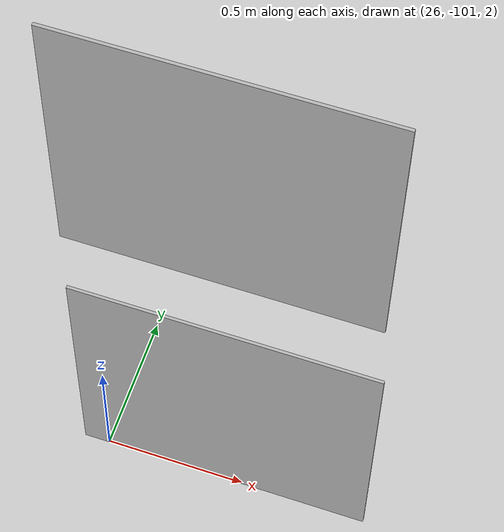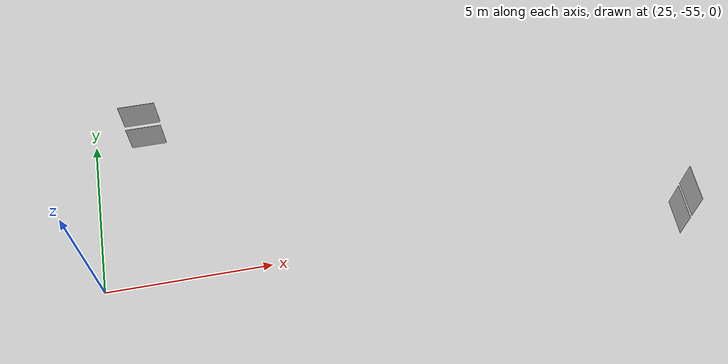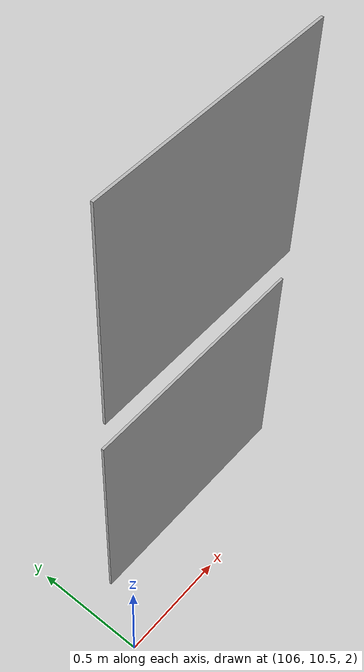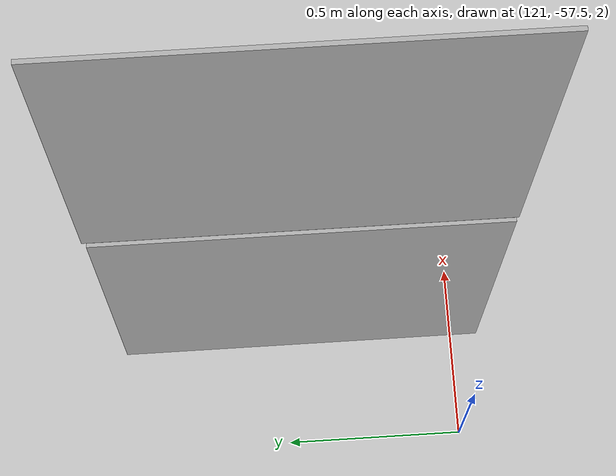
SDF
<sdf version="1.6">
 <world name="default">
  <light name="sun" type="directional">
   <pose>0 0 10 0 -0 0</pose>
   <diffuse>0.8 0.8 0.8 1</diffuse>
   <specular>0.1 0.1 0.1 1</specular>
   <attenuation>
    <range>100000</range>
    <constant>0.9</constant>
    <linear>0.01</linear>
    <quadratic>0.001</quadratic>
   </attenuation>
   <direction>-0.5 0.5 -1</direction>
   <spot><inner_angle>0</inner_angle><outer_angle>0</outer_angle><falloff>0</falloff></spot>
  </light>
  <model name="ground_plane">
   <static>1</static>
   <pose>0 0 -0.2 0 -0 0</pose>
   <scale>4 4 1</scale>
   <link name="link">
    <collision name="collision">
     <geometry><plane><normal>0 0 1</normal><size>100 100</size></plane></geometry>
     <surface><friction><ode><mu>100</mu><mu2>50</mu2></ode></friction></surface>
    </collision>
    <visual name="visual">
     <cast_shadows>0</cast_shadows>
     <geometry><plane><normal>0 0 1</normal><size>100 100</size></plane></geometry>
     <material>
      <script><uri>file://media/materials/scripts/gazebo.material</uri><name>Gazebo/Grey</name></script>
     </material>
    </visual>
   </link>
  </model>
  <gravity>0 0 -9.8</gravity>
  <magnetic_field>6e-06 2.3e-05 -4.2e-05</magnetic_field>
  <atmosphere type="adiabatic"/>
  <physics default="0" name="default_physics" type="ode">
   <max_step_size>0.001</max_step_size>
   <real_time_factor>1</real_time_factor>
   <real_time_update_rate>1000</real_time_update_rate>
  </physics>
  <scene>
   <ambient>235 235 235 1</ambient>
   <shadows>0</shadows>
   <sky><clouds><speed>12</speed></clouds></sky>
   <background>0.7 0.7 0.7 1</background>
  </scene>
  <spherical_coordinates>
   <surface_model>EARTH_WGS84</surface_model>
   <latitude_deg>0</latitude_deg>
   <longitude_deg>0</longitude_deg>
   <elevation>0</elevation>
   <heading_deg>0</heading_deg>
  </spherical_coordinates>
  <model name="Trafficsign_00001">
   <link name="main">
    <pose>0 0 0 3.14159 -1.57079 3.14159</pose>
    <visual name="main_Visual">
     <geometry><box><size>1 1 0.01</size></box></geometry>
     <material>
      <script>
       <uri>model://Trafficsign_00001/materials/scripts</uri>
       <uri>model://Trafficsign_00001/materials/textures</uri>
       <name>Trafficsign_00001</name>
      </script>
     </material>
    </visual>
   </link>
   <static>1</static>
   <pose>22.9963 -3.10558 2.75236 0 -0 0</pose>
  </model>
  <model name="Apriltag36_11_00001">
   <link name="main">
    <visual name="main_Visual">
     <geometry><box><size>1 1 0.01</size></box></geometry>
     <material>
      <script>
       <uri>model://Apriltag36_11_00001/materials/scripts</uri>
       <uri>model://Apriltag36_11_00001/materials/textures</uri>
       <name>Apriltag36_11_00001</name>
      </script>
     </material>
    </visual>
   </link>
   <static>1</static>
   <pose>22.9996 -3.10287 3.92921 3.14159 -1.57079 3.14159</pose>
  </model>
  <model name="Trafficsign_00001_clone">
   <link name="main">
    <pose>0 0 0 3.14159 -1.57079 3.14159</pose>
    <visual name="main_Visual">
     <geometry><box><size>1 1 0.01</size></box></geometry>
     <material>
      <script>
       <uri>model://Trafficsign_00001/materials/scripts</uri>
       <uri>model://Trafficsign_00001/materials/textures</uri>
       <name>Trafficsign_00001</name>
      </script>
     </material>
    </visual>
   </link>
   <static>1</static>
   <pose>27.0016 -51.5408 2.75236 0 -0 -1.5708</pose>
  </model>
  <model name="Apriltag36_11_00001_clone">
   <link name="main">
    <visual name="main_Visual">
     <geometry><box><size>1 1 0.01</size></box></geometry>
     <material>
      <script>
       <uri>model://Apriltag36_11_00001/materials/scripts</uri>
       <uri>model://Apriltag36_11_00001/materials/textures</uri>
       <name>Apriltag36_11_00001</name>
      </script>
     </material>
    </visual>
   </link>
   <static>1</static>
   <pose>27.0291 -51.5417 3.92921 1.5708 -1.57079 3.14159</pose>
  </model>
  <model name="Trafficsign_00003">
   <link name="main">
    <pose>0 0 0 3.14159 -1.57079 3.14159</pose>
    <visual name="main_Visual">
     <geometry><box><size>1 1 0.01</size></box></geometry>
     <material>
      <script>
       <uri>model://Trafficsign_00003/materials/scripts</uri>
       <uri>model://Trafficsign_00003/materials/textures</uri>
       <name>Trafficsign_00003</name>
      </script>
     </material>
    </visual>
   </link>
   <static>1</static>
   <pose>106.98 58.6046 2.74453 0 -0 -1.5708</pose>
  </model>
  <model name="Apriltag36_11_00003">
   <link name="main">
    <visual name="main_Visual">
     <geometry><box><size>1 1 0.01</size></box></geometry>
     <material>
      <script>
       <uri>model://Apriltag36_11_00003/materials/scripts</uri>
       <uri>model://Apriltag36_11_00003/materials/textures</uri>
       <name>Apriltag36_11_00003</name>
      </script>
     </material>
    </visual>
   </link>
   <static>1</static>
   <pose>106.982 58.6051 3.80889 -1.5708 0 0</pose>
  </model>
  <model name="Trafficsign_00002">
   <link name="main">
    <pose>0 0 0 3.14159 -1.57079 3.14159</pose>
    <visual name="main_Visual">
     <geometry><box><size>1 1 0.01</size></box></geometry>
     <material>
      <script>
       <uri>model://Trafficsign_00002/materials/scripts</uri>
       <uri>model://Trafficsign_00002/materials/textures</uri>
       <name>Trafficsign_00002</name>
      </script>
     </material>
    </visual>
   </link>
   <static>1</static>
   <pose>106.568 10.6851 2.74604 0 -0 -1.5708</pose>
  </model>
  <model name="Apriltag36_11_00002">
   <link name="main">
    <visual name="main_Visual">
     <geometry><box><size>1 1 0.01</size></box></geometry>
     <material>
      <script>
       <uri>model://Apriltag36_11_00002/materials/scripts</uri>
       <uri>model://Apriltag36_11_00002/materials/textures</uri>
       <name>Apriltag36_11_00002</name>
      </script>
     </material>
    </visual>
   </link>
   <static>1</static>
   <pose>106.581 10.6829 3.88756 -1.5708 0 0</pose>
  </model>
  <model name="Trafficsign_00003_clone">
   <link name="main">
    <pose>0 0 0 3.14159 -1.57079 3.14159</pose>
    <visual name="main_Visual">
     <geometry><box><size>1 1 0.01</size></box></geometry>
     <material>
      <script>
       <uri>model://Trafficsign_00003/materials/scripts</uri>
       <uri>model://Trafficsign_00003/materials/textures</uri>
       <name>Trafficsign_00003</name>
      </script>
     </material>
    </visual>
   </link>
   <static>1</static>
   <pose>121.242 -57.049 2.74453 0 -0 3.14159</pose>
  </model>
  <model name="Apriltag36_11_00003_clone">
   <link name="main">
    <visual name="main_Visual">
     <geometry><box><size>1 1 0.01</size></box></geometry>
     <material>
      <script>
       <uri>model://Apriltag36_11_00003/materials/scripts</uri>
       <uri>model://Apriltag36_11_00003/materials/textures</uri>
       <name>Apriltag36_11_00003</name>
      </script>
     </material>
    </visual>
   </link>
   <static>1</static>
   <pose>121.231 -57.0454 3.80889 -1.5708 -4e-06 -1.5708</pose>
  </model>
  <model name="Apriltag36_11_00002_clone">
   <link name="main">
    <visual name="main_Visual">
     <geometry><box><size>1 1 0.01</size></box></geometry>
     <material>
      <script>
       <uri>model://Apriltag36_11_00002/materials/scripts</uri>
       <uri>model://Apriltag36_11_00002/materials/textures</uri>
       <name>Apriltag36_11_00002</name>
      </script>
     </material>
    </visual>
   </link>
   <static>1</static>
   <pose>41.4296 -56.564 3.88756 -1.5708 4e-06 1.5765</pose>
  </model>
  <model name="Trafficsign_00002_clone">
   <link name="main">
    <pose>0 0 0 3.14159 -1.57079 3.14159</pose>
    <visual name="main_Visual">
     <geometry><box><size>1 1 0.01</size></box></geometry>
     <material>
      <script>
       <uri>model://Trafficsign_00002/materials/scripts</uri>
       <uri>model://Trafficsign_00002/materials/textures</uri>
       <name>Trafficsign_00002</name>
      </script>
     </material>
    </visual>
   </link>
   <static>1</static>
   <pose>41.4415 -56.5565 2.74604 0 -0 3.14159</pose>
  </model>
  <model name="Trafficsign_00000">
   <link name="main">
    <pose>0 0 0 3.14159 -1.57079 3.14159</pose>
    <visual name="main_Visual">
     <geometry><box><size>1 1 0.01</size></box></geometry>
     <material>
      <script>
       <uri>model://Trafficsign_00000/materials/scripts</uri>
       <uri>model://Trafficsign_00000/materials/textures</uri>
       <name>Trafficsign_00000</name>
      </script>
     </material>
    </visual>
   </link>
   <static>1</static>
   <pose>26.4669 -101.108 2.74745 -0 -0 -1.5708</pose>
  </model>
  <model name="Apriltag36_11_00000">
   <link name="main">
    <visual name="main_Visual">
     <geometry><box><size>1 1 0.01</size></box></geometry>
     <material>
      <script>
       <uri>model://Apriltag36_11_00000/materials/scripts</uri>
       <uri>model://Apriltag36_11_00000/materials/textures</uri>
       <name>Apriltag36_11_00000</name>
      </script>
     </material>
    </visual>
   </link>
   <static>1</static>
   <pose>26.438 -101.047 3.93468 -1.5708 0 0</pose>
  </model>
  <light name="user_directional_light_0" type="directional">
   <pose>39.8371 8.56244 1 0 -0 0</pose>
   <diffuse>0.5 0.5 0.5 1</diffuse>
   <specular>0.1 0.1 0.1 1</specular>
   <direction>0.1 0.1 -0.9</direction>
   <attenuation>
    <range>20</range>
    <constant>0.5</constant>
    <linear>0.01</linear>
    <quadratic>0.001</quadratic>
   </attenuation>
  </light>
  <light name="user_directional_light_1" type="directional">
   <pose>9.69195 1.20616 1 0 -0 0</pose>
   <diffuse>0.5 0.5 0.5 1</diffuse>
   <specular>0.1 0.1 0.1 1</specular>
   <direction>0.1 0.1 -0.9</direction>
   <attenuation>
    <range>20</range>
    <constant>0.5</constant>
    <linear>0.01</linear>
    <quadratic>0.001</quadratic>
   </attenuation>
  </light>
  <light name="user_directional_light_2" type="directional">
   <pose>108.69 68.5173 1 0 -0 0</pose>
   <diffuse>0.5 0.5 0.5 1</diffuse>
   <specular>0.1 0.1 0.1 1</specular>
   <direction>0.1 0.1 -0.9</direction>
   <attenuation>
    <range>20</range>
    <constant>0.5</constant>
    <linear>0.01</linear>
    <quadratic>0.001</quadratic>
   </attenuation>
  </light>
  <light name="user_spot_light_0" type="spot">
   <pose>110.36 63.7443 1 0 -0 0</pose>
   <diffuse>0.5 0.5 0.5 1</diffuse>
   <specular>0.1 0.1 0.1 1</specular>
   <direction>0 0 -1</direction>
   <attenuation>
    <range>20</range>
    <constant>0.5</constant>
    <linear>0.01</linear>
    <quadratic>0.001</quadratic>
   </attenuation>
   <cast_shadows>0</cast_shadows>
   <spot><inner_angle>0.6</inner_angle><outer_angle>1</outer_angle><falloff>1</falloff></spot>
  </light>
  <light name="user_point_light_0" type="point">
   <pose>108.201 66.719 1 0 -0 0</pose>
   <diffuse>0.5 0.5 0.5 1</diffuse>
   <specular>0.1 0.1 0.1 1</specular>
   <attenuation>
    <range>20</range>
    <constant>0.5</constant>
    <linear>0.01</linear>
    <quadratic>0.001</quadratic>
   </attenuation>
   <cast_shadows>0</cast_shadows>
   <direction>0 0 -1</direction>
  </light>
 </world>
</sdf>
